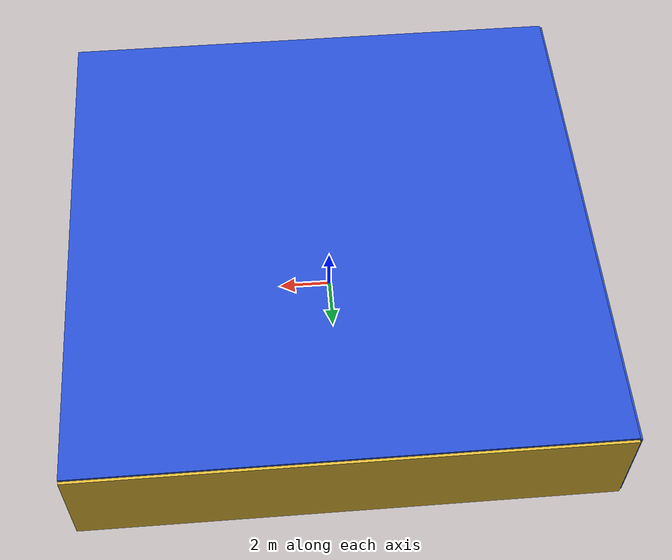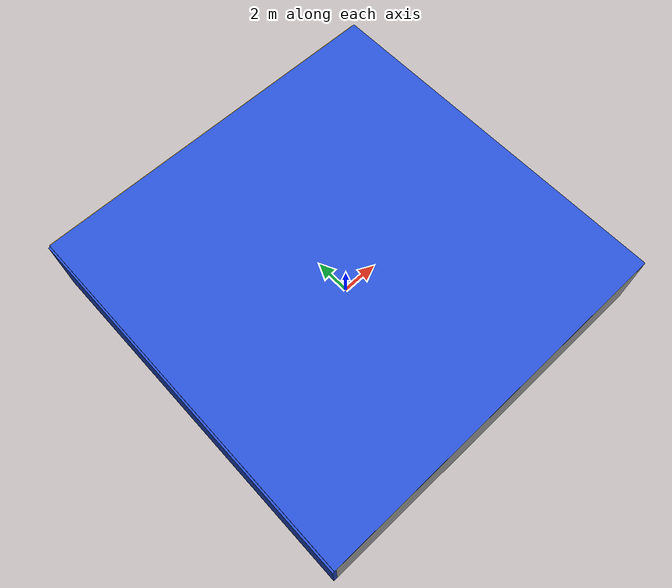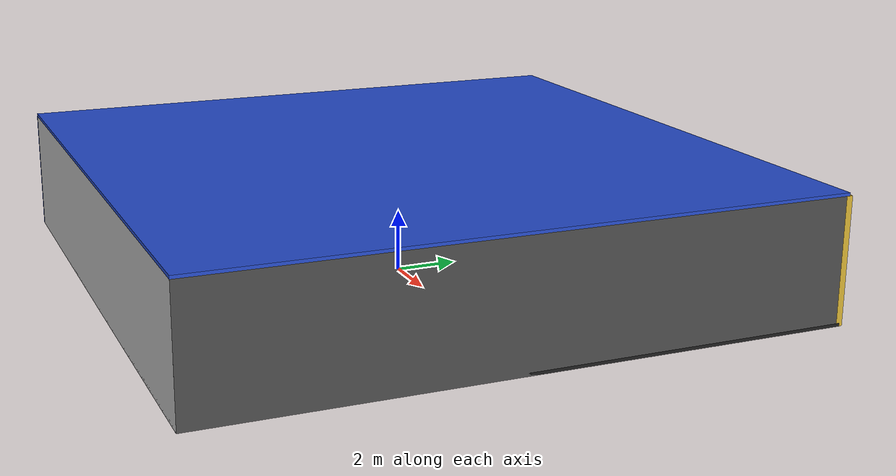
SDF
<sdf version="1.4">
 <world name="default">
  <physics type="ode">
   <max_step_size>0.001</max_step_size>
   <real_time_factor>1</real_time_factor>
   <real_time_update_rate>1000</real_time_update_rate>
   <gravity>0 0 -9.8</gravity>
  </physics>
  <scene><ambient>0.4 0.4 0.4 1</ambient><background>0.7 0.7 0.7 1</background><shadows>1</shadows></scene>
  <model name="Surrounding">
   <static>1</static>
   <link name="Ceiling">
    <collision name="Ceiling_Collision"><geometry><box><size>20 20 0.1</size></box></geometry></collision>
    <visual name="Ceiling_Visual">
     <geometry><box><size>20 20 0.1</size></box></geometry>
     <material>
      <script><uri>file://media/materials/scripts/gazebo.material</uri><name>Gazebo/BlueLaser</name></script>
     </material>
    </visual>
    <pose>0 0 4.05 0 0 0</pose>
   </link>
   <link name="Wall_South">
    <collision name="Wall_South_Collision">
     <geometry><box><size>20 0 4</size></box></geometry>
     <pose>0 0 2 0 -0 0</pose>
    </collision>
    <visual name="Wall_South_Visual">
     <pose>0 0 2 0 -0 0</pose>
     <geometry><box><size>20 0 4</size></box></geometry>
     <material>
      <script><uri>file://media/materials/scripts/gazebo.material</uri><name>Gazebo/Pioneer2Body</name></script>
     </material>
    </visual>
    <velocity_decay><linear>0</linear><angular>0</angular></velocity_decay>
    <pose>0 -10 0 0 -0 0</pose>
   </link>
   <link name="Wall_East">
    <collision name="Wall_21_Collision">
     <geometry><box><size>20 0 4</size></box></geometry>
     <pose>0 0 2 0 -0 0</pose>
    </collision>
    <visual name="Wall_21_Visual">
     <pose>0 0 2 0 -0 0</pose>
     <geometry><box><size>20 0 4</size></box></geometry>
     <material>
      <script><uri>file://media/materials/scripts/gazebo.material</uri><name>Gazebo/DarkGrey</name></script>
     </material>
    </visual>
    <velocity_decay><linear>0</linear><angular>0</angular></velocity_decay>
    <pose>10 0 0 0 -0 1.5708</pose>
   </link>
   <link name="Wall_North">
    <collision name="Wall_22_Collision">
     <geometry><box><size>20 0.2 4</size></box></geometry>
     <pose>0 0 2 0 -0 0</pose>
    </collision>
    <visual name="Wall_22_Visual">
     <pose>0 0 2 0 -0 0</pose>
     <geometry><box><size>20 0.2 4</size></box></geometry>
     <material>
      <script><uri>file://media/materials/scripts/gazebo.material</uri><name>Gazebo/Gold</name></script>
     </material>
    </visual>
    <velocity_decay><linear>0</linear><angular>0</angular></velocity_decay>
    <pose>0 10 0 0 -0 0</pose>
   </link>
   <link name="Wall_West">
    <collision name="Wall_23_Collision">
     <geometry><box><size>20 0.2 4</size></box></geometry>
     <pose>0 0 2 0 -0 0</pose>
    </collision>
    <visual name="Wall_23_Visual">
     <pose>0 0 2 0 -0 0</pose>
     <geometry><box><size>20 0.2 4</size></box></geometry>
     <material>
      <script><uri>file://media/materials/scripts/gazebo.material</uri><name>Gazebo/Blue</name></script>
     </material>
    </visual>
    <velocity_decay><linear>0</linear><angular>0</angular></velocity_decay>
    <pose>-10 0 0 0 0 -1.5708</pose>
   </link>
   <link name="Ground_link">
    <collision name="collision">
     <pose>0 0 .05 0 -0 0</pose>
     <geometry><box><size>20 20 0.1</size></box></geometry>
    </collision>
    <visual name="visual">
     <pose>0 0 .05 0 -0 0</pose>
     <geometry><box><size>20 20 0.1</size></box></geometry>
     <material>
      <script><uri>file://media/materials/scripts/gazebo.material</uri><name>Gazebo/FlatBlack</name></script>
     </material>
    </visual>
   </link>
   <static>1</static>
  </model>
  <spherical_coordinates>
   <surface_model>EARTH_WGS84</surface_model>
   <latitude_deg>0</latitude_deg>
   <longitude_deg>0</longitude_deg>
   <elevation>0</elevation>
   <heading_deg>0</heading_deg>
  </spherical_coordinates>
  <light name="lightball_0" type="diffuse">
   <diffuse>0.8 0.8 0.8 1</diffuse>
   <specular>0.2 0.2 0.2 1</specular>
   <attenuation>
    <range>100</range>
    <constant>0.7</constant>
    <linear>0.01</linear>
    <quadratic>0.001</quadratic>
   </attenuation>
   <direction>-0.5 0.1 -0.9</direction>
   <pose>9.52162421732 4.32511607803 2.3994477677 0 0 0</pose>
  </light>
  <light name="lightball_1" type="diffuse">
   <diffuse>0.8 0.8 0.8 1</diffuse>
   <specular>0.2 0.2 0.2 1</specular>
   <attenuation>
    <range>100</range>
    <constant>0.7</constant>
    <linear>0.01</linear>
    <quadratic>0.001</quadratic>
   </attenuation>
   <direction>-0.5 0.1 -0.9</direction>
   <pose>7.80698988256 -5.99659019418 3.70373565473 0 0 0</pose>
  </light>
  <light name="lightball_2" type="diffuse">
   <diffuse>0.8 0.8 0.8 1</diffuse>
   <specular>0.2 0.2 0.2 1</specular>
   <attenuation>
    <range>100</range>
    <constant>0.7</constant>
    <linear>0.01</linear>
    <quadratic>0.001</quadratic>
   </attenuation>
   <direction>-0.5 0.1 -0.9</direction>
   <pose>1.42360002105 -9.24668452812 1.58780746051 0 0 0</pose>
  </light>
  <light name="lightball_3" type="diffuse">
   <diffuse>0.8 0.8 0.8 1</diffuse>
   <specular>0.2 0.2 0.2 1</specular>
   <attenuation>
    <range>100</range>
    <constant>0.7</constant>
    <linear>0.01</linear>
    <quadratic>0.001</quadratic>
   </attenuation>
   <direction>-0.5 0.1 -0.9</direction>
   <pose>-2.03154769201 -0.226951265289 0.794943595736 0 0 0</pose>
  </light>
  <light name="lightball_4" type="diffuse">
   <diffuse>0.8 0.8 0.8 1</diffuse>
   <specular>0.2 0.2 0.2 1</specular>
   <attenuation>
    <range>100</range>
    <constant>0.7</constant>
    <linear>0.01</linear>
    <quadratic>0.001</quadratic>
   </attenuation>
   <direction>-0.5 0.1 -0.9</direction>
   <pose>5.27505853909 -5.76054935525 0.937210555392 0 0 0</pose>
  </light>
  <light name="lightball_5" type="diffuse">
   <diffuse>0.8 0.8 0.8 1</diffuse>
   <specular>0.2 0.2 0.2 1</specular>
   <attenuation>
    <range>100</range>
    <constant>0.7</constant>
    <linear>0.01</linear>
    <quadratic>0.001</quadratic>
   </attenuation>
   <direction>-0.5 0.1 -0.9</direction>
   <pose>-5.49817062913 3.0714982476 1.58419398868 0 0 0</pose>
  </light>
  <light name="lightball_6" type="diffuse">
   <diffuse>0.8 0.8 0.8 1</diffuse>
   <specular>0.2 0.2 0.2 1</specular>
   <attenuation>
    <range>100</range>
    <constant>0.7</constant>
    <linear>0.01</linear>
    <quadratic>0.001</quadratic>
   </attenuation>
   <direction>-0.5 0.1 -0.9</direction>
   <pose>-3.00683991477 9.60195952777 2.33303100243 0 0 0</pose>
  </light>
  <light name="lightball_7" type="diffuse">
   <diffuse>0.8 0.8 0.8 1</diffuse>
   <specular>0.2 0.2 0.2 1</specular>
   <attenuation>
    <range>100</range>
    <constant>0.7</constant>
    <linear>0.01</linear>
    <quadratic>0.001</quadratic>
   </attenuation>
   <direction>-0.5 0.1 -0.9</direction>
   <pose>-4.14035666123 1.77476401646 2.24892890044 0 0 0</pose>
  </light>
  <light name="lightball_8" type="diffuse">
   <diffuse>0.8 0.8 0.8 1</diffuse>
   <specular>0.2 0.2 0.2 1</specular>
   <attenuation>
    <range>100</range>
    <constant>0.7</constant>
    <linear>0.01</linear>
    <quadratic>0.001</quadratic>
   </attenuation>
   <direction>-0.5 0.1 -0.9</direction>
   <pose>-5.47408806726 2.19565670464 2.1567437415 0 0 0</pose>
  </light>
  <include><uri>model://table</uri><pose>-2.08505430555 1.84460124706 0 0 0 2.5088787789</pose></include>
  <include><uri>model://table</uri><pose>3.7162394413 8.16138157883 0 0 0 2.38853068553</pose></include>
  <include><uri>model://table</uri><pose>8.20354633386 -7.68275990482 0 0 0 1.65064177734</pose></include>
 </world>
</sdf>

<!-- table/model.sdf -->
<sdf version="1.5">
  <model name="table">
    <static>true</static>
    <link name="link">
      <collision name="surface">
        <pose>0 0 1.0 0 0 0</pose>
        <geometry>
          <box>
            <size>1.5 0.8 0.03</size>
          </box>
        </geometry>
        <surface>
          <friction>
            <ode>
              <mu>0.6</mu>
              <mu2>0.6</mu2>
            </ode>
          </friction>
        </surface>
      </collision>
      <visual name="visual1">
        <pose>0 0 1.0 0 0 0</pose>
        <geometry>
          <box>
            <size>1.5 0.8 0.03</size>
          </box>
        </geometry>
        <material>
          <script>
            <uri>model://media/materials/scripts/gazebo.material</uri>
            <name>Gazebo/Wood</name>
          </script>
        </material>
      </visual>
      <collision name="front_left_leg">
        <pose>0.68 0.38 0.5 0 0 0</pose>
        <geometry>
          <cylinder>
            <radius>0.02</radius>
            <length>1.0</length>
          </cylinder>
        </geometry>
      </collision>
      <visual name="front_left_leg">
        <pose>0.68 0.38 0.5 0 0 0</pose>
        <geometry>
          <cylinder>
            <radius>0.02</radius>
            <length>1.0</length>
          </cylinder>
        </geometry>
        <material>
          <script>
            <uri>model://media/materials/scripts/gazebo.material</uri>
            <name>Gazebo/Grey</name>
          </script>
        </material>
      </visual>
      <collision name="front_right_leg">
        <pose>0.68 -0.38 0.5 0 0 0</pose>
        <geometry>
          <cylinder>
            <radius>0.02</radius>
            <length>1.0</length>
          </cylinder>
        </geometry>
      </collision>
      <visual name="front_right_leg">
        <pose>0.68 -0.38 0.5 0 0 0</pose>
        <geometry>
          <cylinder>
            <radius>0.02</radius>
            <length>1.0</length>
          </cylinder>
        </geometry>
        <material>
          <script>
            <uri>model://media/materials/scripts/gazebo.material</uri>
            <name>Gazebo/Grey</name>
          </script>
        </material>
      </visual>
      <collision name="back_right_leg">
        <pose>-0.68 -0.38 0.5 0 0 0</pose>
        <geometry>
          <cylinder>
            <radius>0.02</radius>
            <length>1.0</length>
          </cylinder>
        </geometry>
      </collision>
      <visual name="back_right_leg">
        <pose>-0.68 -0.38 0.5 0 0 0</pose>
        <geometry>
          <cylinder>
            <radius>0.02</radius>
            <length>1.0</length>
          </cylinder>
        </geometry>
        <material>
          <script>
            <uri>model://media/materials/scripts/gazebo.material</uri>
            <name>Gazebo/Grey</name>
          </script>
        </material>
      </visual>
      <collision name="back_left_leg">
        <pose>-0.68 0.38 0.5 0 0 0</pose>
        <geometry>
          <cylinder>
            <radius>0.02</radius>
            <length>1.0</length>
          </cylinder>
        </geometry>
      </collision>
      <visual name="back_left_leg">
        <pose>-0.68 0.38 0.5 0 0 0</pose>
        <geometry>
          <cylinder>
            <radius>0.02</radius>
            <length>1.0</length>
          </cylinder>
        </geometry>
        <material>
          <script>
            <uri>model://media/materials/scripts/gazebo.material</uri>
            <name>Gazebo/Grey</name>
          </script>
        </material>
      </visual>
    </link>
  </model>
</sdf>
